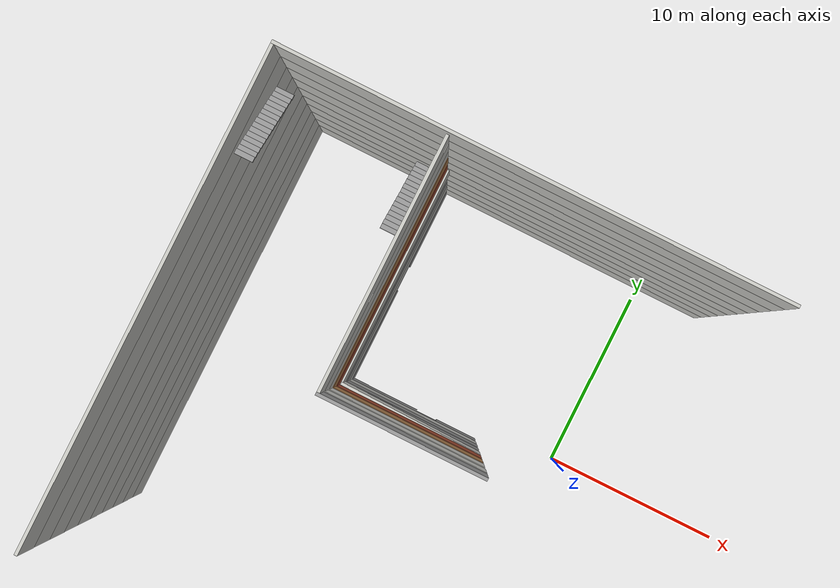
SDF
<sdf version="1.7">
 <model name="high_building">
  <pose>-8.08785 -0.655 0 0 -0 0</pose>
  <link name="Stairs_10">
   <visual name="Stairs_10_Visual_0">
    <pose>-4.5626 10.3622 21.0833 0 -0 0</pose>
    <geometry><box><size>1 0.233333 0.166667</size></box></geometry>
    <material>
     <script><uri>file://media/materials/scripts/gazebo.material</uri><name>Gazebo/Grey</name></script>
     <ambient>1 1 1 1</ambient>
    </material>
    <meta><layer>7</layer></meta>
   </visual>
   <collision name="Stairs_10_Collision_0">
    <geometry><box><size>1 0.233333 0.166667</size></box></geometry>
    <pose>-4.5626 10.3622 21.0833 0 -0 0</pose>
   </collision>
   <visual name="Stairs_10_Visual_1">
    <pose>-4.5626 10.1289 21.25 0 -0 0</pose>
    <geometry><box><size>1 0.233333 0.166667</size></box></geometry>
    <material>
     <script><uri>file://media/materials/scripts/gazebo.material</uri><name>Gazebo/Grey</name></script>
     <ambient>1 1 1 1</ambient>
    </material>
    <meta><layer>7</layer></meta>
   </visual>
   <collision name="Stairs_10_Collision_1">
    <geometry><box><size>1 0.233333 0.166667</size></box></geometry>
    <pose>-4.5626 10.1289 21.25 0 -0 0</pose>
   </collision>
   <visual name="Stairs_10_Visual_2">
    <pose>-4.5626 9.89555 21.4167 0 -0 0</pose>
    <geometry><box><size>1 0.233333 0.166667</size></box></geometry>
    <material>
     <script><uri>file://media/materials/scripts/gazebo.material</uri><name>Gazebo/Grey</name></script>
     <ambient>1 1 1 1</ambient>
    </material>
    <meta><layer>7</layer></meta>
   </visual>
   <collision name="Stairs_10_Collision_2">
    <geometry><box><size>1 0.233333 0.166667</size></box></geometry>
    <pose>-4.5626 9.89555 21.4167 0 -0 0</pose>
   </collision>
   <visual name="Stairs_10_Visual_3">
    <pose>-4.5626 9.66222 21.5833 0 -0 0</pose>
    <geometry><box><size>1 0.233333 0.166667</size></box></geometry>
    <material>
     <script><uri>file://media/materials/scripts/gazebo.material</uri><name>Gazebo/Grey</name></script>
     <ambient>1 1 1 1</ambient>
    </material>
    <meta><layer>7</layer></meta>
   </visual>
   <collision name="Stairs_10_Collision_3">
    <geometry><box><size>1 0.233333 0.166667</size></box></geometry>
    <pose>-4.5626 9.66222 21.5833 0 -0 0</pose>
   </collision>
   <visual name="Stairs_10_Visual_4">
    <pose>-4.5626 9.42889 21.75 0 -0 0</pose>
    <geometry><box><size>1 0.233333 0.166667</size></box></geometry>
    <material>
     <script><uri>file://media/materials/scripts/gazebo.material</uri><name>Gazebo/Grey</name></script>
     <ambient>1 1 1 1</ambient>
    </material>
    <meta><layer>7</layer></meta>
   </visual>
   <collision name="Stairs_10_Collision_4">
    <geometry><box><size>1 0.233333 0.166667</size></box></geometry>
    <pose>-4.5626 9.42889 21.75 0 -0 0</pose>
   </collision>
   <visual name="Stairs_10_Visual_5">
    <pose>-4.5626 9.19555 21.9167 0 -0 0</pose>
    <geometry><box><size>1 0.233333 0.166667</size></box></geometry>
    <material>
     <script><uri>file://media/materials/scripts/gazebo.material</uri><name>Gazebo/Grey</name></script>
     <ambient>1 1 1 1</ambient>
    </material>
    <meta><layer>7</layer></meta>
   </visual>
   <collision name="Stairs_10_Collision_5">
    <geometry><box><size>1 0.233333 0.166667</size></box></geometry>
    <pose>-4.5626 9.19555 21.9167 0 -0 0</pose>
   </collision>
   <visual name="Stairs_10_Visual_6">
    <pose>-4.5626 8.96222 22.0833 0 -0 0</pose>
    <geometry><box><size>1 0.233333 0.166667</size></box></geometry>
    <material>
     <script><uri>file://media/materials/scripts/gazebo.material</uri><name>Gazebo/Grey</name></script>
     <ambient>1 1 1 1</ambient>
    </material>
    <meta><layer>7</layer></meta>
   </visual>
   <collision name="Stairs_10_Collision_6">
    <geometry><box><size>1 0.233333 0.166667</size></box></geometry>
    <pose>-4.5626 8.96222 22.0833 0 -0 0</pose>
   </collision>
   <visual name="Stairs_10_Visual_7">
    <pose>-4.5626 8.72889 22.25 0 -0 0</pose>
    <geometry><box><size>1 0.233333 0.166667</size></box></geometry>
    <material>
     <script><uri>file://media/materials/scripts/gazebo.material</uri><name>Gazebo/Grey</name></script>
     <ambient>1 1 1 1</ambient>
    </material>
    <meta><layer>7</layer></meta>
   </visual>
   <collision name="Stairs_10_Collision_7">
    <geometry><box><size>1 0.233333 0.166667</size></box></geometry>
    <pose>-4.5626 8.72889 22.25 0 -0 0</pose>
   </collision>
   <visual name="Stairs_10_Visual_8">
    <pose>-4.5626 8.49555 22.4167 0 -0 0</pose>
    <geometry><box><size>1 0.233333 0.166667</size></box></geometry>
    <material>
     <script><uri>file://media/materials/scripts/gazebo.material</uri><name>Gazebo/Grey</name></script>
     <ambient>1 1 1 1</ambient>
    </material>
    <meta><layer>7</layer></meta>
   </visual>
   <collision name="Stairs_10_Collision_8">
    <geometry><box><size>1 0.233333 0.166667</size></box></geometry>
    <pose>-4.5626 8.49555 22.4167 0 -0 0</pose>
   </collision>
   <visual name="Stairs_10_Visual_9">
    <pose>-4.5626 8.26222 22.5833 0 -0 0</pose>
    <geometry><box><size>1 0.233333 0.166667</size></box></geometry>
    <material>
     <script><uri>file://media/materials/scripts/gazebo.material</uri><name>Gazebo/Grey</name></script>
     <ambient>1 1 1 1</ambient>
    </material>
    <meta><layer>7</layer></meta>
   </visual>
   <collision name="Stairs_10_Collision_9">
    <geometry><box><size>1 0.233333 0.166667</size></box></geometry>
    <pose>-4.5626 8.26222 22.5833 0 -0 0</pose>
   </collision>
   <visual name="Stairs_10_Visual_10">
    <pose>-4.5626 8.02889 22.75 0 -0 0</pose>
    <geometry><box><size>1 0.233333 0.166667</size></box></geometry>
    <material>
     <script><uri>file://media/materials/scripts/gazebo.material</uri><name>Gazebo/Grey</name></script>
     <ambient>1 1 1 1</ambient>
    </material>
    <meta><layer>7</layer></meta>
   </visual>
   <collision name="Stairs_10_Collision_10">
    <geometry><box><size>1 0.233333 0.166667</size></box></geometry>
    <pose>-4.5626 8.02889 22.75 0 -0 0</pose>
   </collision>
   <visual name="Stairs_10_Visual_11">
    <pose>-4.5626 7.79555 22.9167 0 -0 0</pose>
    <geometry><box><size>1 0.233333 0.166667</size></box></geometry>
    <material>
     <script><uri>file://media/materials/scripts/gazebo.material</uri><name>Gazebo/Grey</name></script>
     <ambient>1 1 1 1</ambient>
    </material>
    <meta><layer>7</layer></meta>
   </visual>
   <collision name="Stairs_10_Collision_11">
    <geometry><box><size>1 0.233333 0.166667</size></box></geometry>
    <pose>-4.5626 7.79555 22.9167 0 -0 0</pose>
   </collision>
   <visual name="Stairs_10_Visual_12">
    <pose>-4.5626 7.56222 23.0833 0 -0 0</pose>
    <geometry><box><size>1 0.233333 0.166667</size></box></geometry>
    <material>
     <script><uri>file://media/materials/scripts/gazebo.material</uri><name>Gazebo/Grey</name></script>
     <ambient>1 1 1 1</ambient>
    </material>
    <meta><layer>7</layer></meta>
   </visual>
   <collision name="Stairs_10_Collision_12">
    <geometry><box><size>1 0.233333 0.166667</size></box></geometry>
    <pose>-4.5626 7.56222 23.0833 0 -0 0</pose>
   </collision>
   <visual name="Stairs_10_Visual_13">
    <pose>-4.5626 7.32889 23.25 0 -0 0</pose>
    <geometry><box><size>1 0.233333 0.166667</size></box></geometry>
    <material>
     <script><uri>file://media/materials/scripts/gazebo.material</uri><name>Gazebo/Grey</name></script>
     <ambient>1 1 1 1</ambient>
    </material>
    <meta><layer>7</layer></meta>
   </visual>
   <collision name="Stairs_10_Collision_13">
    <geometry><box><size>1 0.233333 0.166667</size></box></geometry>
    <pose>-4.5626 7.32889 23.25 0 -0 0</pose>
   </collision>
   <visual name="Stairs_10_Visual_14">
    <pose>-4.5626 7.09555 23.4167 0 -0 0</pose>
    <geometry><box><size>1 0.233333 0.166667</size></box></geometry>
    <material>
     <script><uri>file://media/materials/scripts/gazebo.material</uri><name>Gazebo/Grey</name></script>
     <ambient>1 1 1 1</ambient>
    </material>
    <meta><layer>7</layer></meta>
   </visual>
   <collision name="Stairs_10_Collision_14">
    <geometry><box><size>1 0.233333 0.166667</size></box></geometry>
    <pose>-4.5626 7.09555 23.4167 0 -0 0</pose>
   </collision>
  </link>
  <link name="Stairs_11">
   <visual name="Stairs_11_Visual_0">
    <pose>-11.3873 10.2919 24.0833 0 -0 0</pose>
    <geometry><box><size>1 0.233333 0.166667</size></box></geometry>
    <material>
     <script><uri>file://media/materials/scripts/gazebo.material</uri><name>Gazebo/Grey</name></script>
     <ambient>1 1 1 1</ambient>
    </material>
    <meta><layer>8</layer></meta>
   </visual>
   <collision name="Stairs_11_Collision_0">
    <geometry><box><size>1 0.233333 0.166667</size></box></geometry>
    <pose>-11.3873 10.2919 24.0833 0 -0 0</pose>
   </collision>
   <visual name="Stairs_11_Visual_1">
    <pose>-11.3873 10.0585 24.25 0 -0 0</pose>
    <geometry><box><size>1 0.233333 0.166667</size></box></geometry>
    <material>
     <script><uri>file://media/materials/scripts/gazebo.material</uri><name>Gazebo/Grey</name></script>
     <ambient>1 1 1 1</ambient>
    </material>
    <meta><layer>8</layer></meta>
   </visual>
   <collision name="Stairs_11_Collision_1">
    <geometry><box><size>1 0.233333 0.166667</size></box></geometry>
    <pose>-11.3873 10.0585 24.25 0 -0 0</pose>
   </collision>
   <visual name="Stairs_11_Visual_2">
    <pose>-11.3873 9.8252 24.4167 0 -0 0</pose>
    <geometry><box><size>1 0.233333 0.166667</size></box></geometry>
    <material>
     <script><uri>file://media/materials/scripts/gazebo.material</uri><name>Gazebo/Grey</name></script>
     <ambient>1 1 1 1</ambient>
    </material>
    <meta><layer>8</layer></meta>
   </visual>
   <collision name="Stairs_11_Collision_2">
    <geometry><box><size>1 0.233333 0.166667</size></box></geometry>
    <pose>-11.3873 9.8252 24.4167 0 -0 0</pose>
   </collision>
   <visual name="Stairs_11_Visual_3">
    <pose>-11.3873 9.59186 24.5833 0 -0 0</pose>
    <geometry><box><size>1 0.233333 0.166667</size></box></geometry>
    <material>
     <script><uri>file://media/materials/scripts/gazebo.material</uri><name>Gazebo/Grey</name></script>
     <ambient>1 1 1 1</ambient>
    </material>
    <meta><layer>8</layer></meta>
   </visual>
   <collision name="Stairs_11_Collision_3">
    <geometry><box><size>1 0.233333 0.166667</size></box></geometry>
    <pose>-11.3873 9.59186 24.5833 0 -0 0</pose>
   </collision>
   <visual name="Stairs_11_Visual_4">
    <pose>-11.3873 9.35853 24.75 0 -0 0</pose>
    <geometry><box><size>1 0.233333 0.166667</size></box></geometry>
    <material>
     <script><uri>file://media/materials/scripts/gazebo.material</uri><name>Gazebo/Grey</name></script>
     <ambient>1 1 1 1</ambient>
    </material>
    <meta><layer>8</layer></meta>
   </visual>
   <collision name="Stairs_11_Collision_4">
    <geometry><box><size>1 0.233333 0.166667</size></box></geometry>
    <pose>-11.3873 9.35853 24.75 0 -0 0</pose>
   </collision>
   <visual name="Stairs_11_Visual_5">
    <pose>-11.3873 9.1252 24.9167 0 -0 0</pose>
    <geometry><box><size>1 0.233333 0.166667</size></box></geometry>
    <material>
     <script><uri>file://media/materials/scripts/gazebo.material</uri><name>Gazebo/Grey</name></script>
     <ambient>1 1 1 1</ambient>
    </material>
    <meta><layer>8</layer></meta>
   </visual>
   <collision name="Stairs_11_Collision_5">
    <geometry><box><size>1 0.233333 0.166667</size></box></geometry>
    <pose>-11.3873 9.1252 24.9167 0 -0 0</pose>
   </collision>
   <visual name="Stairs_11_Visual_6">
    <pose>-11.3873 8.89186 25.0833 0 -0 0</pose>
    <geometry><box><size>1 0.233333 0.166667</size></box></geometry>
    <material>
     <script><uri>file://media/materials/scripts/gazebo.material</uri><name>Gazebo/Grey</name></script>
     <ambient>1 1 1 1</ambient>
    </material>
    <meta><layer>8</layer></meta>
   </visual>
   <collision name="Stairs_11_Collision_6">
    <geometry><box><size>1 0.233333 0.166667</size></box></geometry>
    <pose>-11.3873 8.89186 25.0833 0 -0 0</pose>
   </collision>
   <visual name="Stairs_11_Visual_7">
    <pose>-11.3873 8.65853 25.25 0 -0 0</pose>
    <geometry><box><size>1 0.233333 0.166667</size></box></geometry>
    <material>
     <script><uri>file://media/materials/scripts/gazebo.material</uri><name>Gazebo/Grey</name></script>
     <ambient>1 1 1 1</ambient>
    </material>
    <meta><layer>8</layer></meta>
   </visual>
   <collision name="Stairs_11_Collision_7">
    <geometry><box><size>1 0.233333 0.166667</size></box></geometry>
    <pose>-11.3873 8.65853 25.25 0 -0 0</pose>
   </collision>
   <visual name="Stairs_11_Visual_8">
    <pose>-11.3873 8.4252 25.4167 0 -0 0</pose>
    <geometry><box><size>1 0.233333 0.166667</size></box></geometry>
    <material>
     <script><uri>file://media/materials/scripts/gazebo.material</uri><name>Gazebo/Grey</name></script>
     <ambient>1 1 1 1</ambient>
    </material>
    <meta><layer>8</layer></meta>
   </visual>
   <collision name="Stairs_11_Collision_8">
    <geometry><box><size>1 0.233333 0.166667</size></box></geometry>
    <pose>-11.3873 8.4252 25.4167 0 -0 0</pose>
   </collision>
   <visual name="Stairs_11_Visual_9">
    <pose>-11.3873 8.19186 25.5833 0 -0 0</pose>
    <geometry><box><size>1 0.233333 0.166667</size></box></geometry>
    <material>
     <script><uri>file://media/materials/scripts/gazebo.material</uri><name>Gazebo/Grey</name></script>
     <ambient>1 1 1 1</ambient>
    </material>
    <meta><layer>8</layer></meta>
   </visual>
   <collision name="Stairs_11_Collision_9">
    <geometry><box><size>1 0.233333 0.166667</size></box></geometry>
    <pose>-11.3873 8.19186 25.5833 0 -0 0</pose>
   </collision>
   <visual name="Stairs_11_Visual_10">
    <pose>-11.3873 7.95853 25.75 0 -0 0</pose>
    <geometry><box><size>1 0.233333 0.166667</size></box></geometry>
    <material>
     <script><uri>file://media/materials/scripts/gazebo.material</uri><name>Gazebo/Grey</name></script>
     <ambient>1 1 1 1</ambient>
    </material>
    <meta><layer>8</layer></meta>
   </visual>
   <collision name="Stairs_11_Collision_10">
    <geometry><box><size>1 0.233333 0.166667</size></box></geometry>
    <pose>-11.3873 7.95853 25.75 0 -0 0</pose>
   </collision>
   <visual name="Stairs_11_Visual_11">
    <pose>-11.3873 7.7252 25.9167 0 -0 0</pose>
    <geometry><box><size>1 0.233333 0.166667</size></box></geometry>
    <material>
     <script><uri>file://media/materials/scripts/gazebo.material</uri><name>Gazebo/Grey</name></script>
     <ambient>1 1 1 1</ambient>
    </material>
    <meta><layer>8</layer></meta>
   </visual>
   <collision name="Stairs_11_Collision_11">
    <geometry><box><size>1 0.233333 0.166667</size></box></geometry>
    <pose>-11.3873 7.7252 25.9167 0 -0 0</pose>
   </collision>
   <visual name="Stairs_11_Visual_12">
    <pose>-11.3873 7.49186 26.0833 0 -0 0</pose>
    <geometry><box><size>1 0.233333 0.166667</size></box></geometry>
    <material>
     <script><uri>file://media/materials/scripts/gazebo.material</uri><name>Gazebo/Grey</name></script>
     <ambient>1 1 1 1</ambient>
    </material>
    <meta><layer>8</layer></meta>
   </visual>
   <collision name="Stairs_11_Collision_12">
    <geometry><box><size>1 0.233333 0.166667</size></box></geometry>
    <pose>-11.3873 7.49186 26.0833 0 -0 0</pose>
   </collision>
   <visual name="Stairs_11_Visual_13">
    <pose>-11.3873 7.25853 26.25 0 -0 0</pose>
    <geometry><box><size>1 0.233333 0.166667</size></box></geometry>
    <material>
     <script><uri>file://media/materials/scripts/gazebo.material</uri><name>Gazebo/Grey</name></script>
     <ambient>1 1 1 1</ambient>
    </material>
    <meta><layer>8</layer></meta>
   </visual>
   <collision name="Stairs_11_Collision_13">
    <geometry><box><size>1 0.233333 0.166667</size></box></geometry>
    <pose>-11.3873 7.25853 26.25 0 -0 0</pose>
   </collision>
   <visual name="Stairs_11_Visual_14">
    <pose>-11.3873 7.0252 26.4167 0 -0 0</pose>
    <geometry><box><size>1 0.233333 0.166667</size></box></geometry>
    <material>
     <script><uri>file://media/materials/scripts/gazebo.material</uri><name>Gazebo/Grey</name></script>
     <ambient>1 1 1 1</ambient>
    </material>
    <meta><layer>8</layer></meta>
   </visual>
   <collision name="Stairs_11_Collision_14">
    <geometry><box><size>1 0.233333 0.166667</size></box></geometry>
    <pose>-11.3873 7.0252 26.4167 0 -0 0</pose>
   </collision>
  </link>
  <link name="Wall_100">
   <collision name="Wall_100_Collision">
    <geometry><box><size>7.75 0.15 2.5</size></box></geometry>
    <pose>0 0 1.25 0 -0 0</pose>
   </collision>
   <visual name="Wall_100_Visual">
    <pose>0 0 1.25 0 -0 0</pose>
    <geometry><box><size>7.75 0.15 2.5</size></box></geometry>
    <material>
     <script><uri>file://media/materials/scripts/gazebo.material</uri><name>Gazebo/CeilingTiled</name></script>
     <ambient>1 1 1 1</ambient>
    </material>
    <meta><layer>8</layer></meta>
   </visual>
   <pose>-0.162125 -0.369911 24 0 -0 3.14159</pose>
  </link>
  <link name="Wall_101">
   <collision name="Wall_101_Collision">
    <geometry><box><size>11.75 0.15 2.5</size></box></geometry>
    <pose>0 0 1.25 0 -0 0</pose>
   </collision>
   <visual name="Wall_101_Visual">
    <pose>0 0 1.25 0 -0 0</pose>
    <geometry><box><size>11.75 0.15 2.5</size></box></geometry>
    <material>
     <script><uri>file://media/materials/scripts/gazebo.material</uri><name>Gazebo/CeilingTiled</name></script>
     <ambient>1 1 1 1</ambient>
    </material>
    <meta><layer>8</layer></meta>
   </visual>
   <pose>-3.96212 5.43009 24 0 -0 1.5708</pose>
  </link>
  <link name="Wall_104">
   <collision name="Wall_104_Collision">
    <geometry><box><size>23.639 0.15 3</size></box></geometry>
    <pose>0 0 1.5 0 -0 0</pose>
   </collision>
   <visual name="Wall_104_Visual">
    <pose>0 0 1.5 0 -0 0</pose>
    <geometry><box><size>23.639 0.15 3</size></box></geometry>
    <material>
     <script><uri>file://media/materials/scripts/gazebo.material</uri><name>Gazebo/CeilingTiled</name></script>
     <ambient>1 1 1 1</ambient>
    </material>
    <meta><layer>9</layer></meta>
   </visual>
   <pose>-0.08465 11.425 27 0 -0 3.14159</pose>
  </link>
  <link name="Wall_105">
   <collision name="Wall_105_Collision">
    <geometry><box><size>23 0.15 3</size></box></geometry>
    <pose>0 0 1.5 0 -0 0</pose>
   </collision>
   <visual name="Wall_105_Visual">
    <pose>0 0 1.5 0 -0 0</pose>
    <geometry><box><size>23 0.15 3</size></box></geometry>
    <material>
     <script><uri>file://media/materials/scripts/gazebo.material</uri><name>Gazebo/CeilingTiled</name></script>
     <ambient>1 1 1 1</ambient>
    </material>
    <meta><layer>9</layer></meta>
   </visual>
   <pose>-11.8292 -0 27 0 -0 -1.5708</pose>
  </link>
  <link name="Wall_107">
   <collision name="Wall_107_Collision">
    <geometry><box><size>7.75 0.15 2.5</size></box></geometry>
    <pose>0 0 1.25 0 -0 0</pose>
   </collision>
   <visual name="Wall_107_Visual">
    <pose>0 0 1.25 0 -0 0</pose>
    <geometry><box><size>7.75 0.15 2.5</size></box></geometry>
    <material>
     <script><uri>file://media/materials/scripts/gazebo.material</uri><name>Gazebo/Grey</name></script>
     <ambient>1 1 1 1</ambient>
    </material>
    <meta><layer>9</layer></meta>
   </visual>
   <pose>-0.162125 -0.369911 27 0 -0 3.14159</pose>
  </link>
  <link name="Wall_108">
   <collision name="Wall_108_Collision">
    <geometry><box><size>11.75 0.15 2.5</size></box></geometry>
    <pose>0 0 1.25 0 -0 0</pose>
   </collision>
   <visual name="Wall_108_Visual">
    <pose>0 0 1.25 0 -0 0</pose>
    <geometry><box><size>11.75 0.15 2.5</size></box></geometry>
    <material>
     <script><uri>file://media/materials/scripts/gazebo.material</uri><name>Gazebo/CeilingTiled</name></script>
     <ambient>1 1 1 1</ambient>
    </material>
    <meta><layer>9</layer></meta>
   </visual>
   <pose>-3.96212 5.43009 27 0 -0 1.5708</pose>
  </link>
  <link name="Wall_11">
   <collision name="Wall_11_Collision">
    <geometry><box><size>23.6394 0.15 3</size></box></geometry>
    <pose>0 0 1.5 0 -0 0</pose>
   </collision>
   <visual name="Wall_11_Visual">
    <pose>0 0 1.5 0 -0 0</pose>
    <geometry><box><size>23.6394 0.15 3</size></box></geometry>
    <material>
     <script><uri>file://media/materials/scripts/gazebo.material</uri><name>Gazebo/CeilingTiled</name></script>
     <ambient>1 1 1 1</ambient>
    </material>
    <meta><layer>0</layer></meta>
   </visual>
   <pose>-0.08465 11.425 0 0 -0 3.14159</pose>
  </link>
  <link name="Wall_12">
   <collision name="Wall_12_Collision">
    <geometry><box><size>23 0.15 3</size></box></geometry>
    <pose>0 0 1.5 0 -0 0</pose>
   </collision>
   <visual name="Wall_12_Visual">
    <pose>0 0 1.5 0 -0 0</pose>
    <geometry><box><size>23 0.15 3</size></box></geometry>
    <material>
     <script><uri>file://media/materials/scripts/gazebo.material</uri><name>Gazebo/CeilingTiled</name></script>
     <ambient>1 1 1 1</ambient>
    </material>
    <meta><layer>0</layer></meta>
   </visual>
   <pose>-11.8292 -0 0 0 -0 -1.5708</pose>
  </link>
  <link name="Wall_15">
   <pose>-0.162125 -0.369911 0 0 -0 3.14159</pose>
   <visual name="Wall_15_Visual_0">
    <pose>-2.65212 0 1.25 0 -0 0</pose>
    <geometry><box><size>2.44576 0.15 2.5</size></box></geometry>
    <material>
     <script><uri>file://media/materials/scripts/gazebo.material</uri><name>Gazebo/Grey</name></script>
     <ambient>1 1 1 1</ambient>
    </material>
    <meta><layer>0</layer></meta>
   </visual>
   <collision name="Wall_15_Collision_0">
    <geometry><box><size>2.44576 0.15 2.5</size></box></geometry>
    <pose>-2.65212 0 1.25 0 -0 0</pose>
   </collision>
   <visual name="Wall_15_Visual_1">
    <pose>1.82288 0 1.25 0 -0 0</pose>
    <geometry><box><size>4.10424 0.15 2.5</size></box></geometry>
    <material>
     <script><uri>file://media/materials/scripts/gazebo.material</uri><name>Gazebo/Grey</name></script>
     <ambient>1 1 1 1</ambient>
    </material>
    <meta><layer>0</layer></meta>
   </visual>
   <collision name="Wall_15_Collision_1">
    <geometry><box><size>4.10424 0.15 2.5</size></box></geometry>
    <pose>1.82288 0 1.25 0 -0 0</pose>
   </collision>
   <visual name="Wall_15_Visual_2">
    <pose>-0.829244 0 2.25 0 -0 0</pose>
    <geometry><box><size>1.2 0.15 0.5</size></box></geometry>
    <material>
     <script><uri>file://media/materials/scripts/gazebo.material</uri><name>Gazebo/Grey</name></script>
     <ambient>1 1 1 1</ambient>
    </material>
    <meta><layer>0</layer></meta>
   </visual>
   <collision name="Wall_15_Collision_2">
    <geometry><box><size>1.2 0.15 0.5</size></box></geometry>
    <pose>-0.829244 0 2.25 0 -0 0</pose>
   </collision>
  </link>
  <link name="Wall_16">
   <pose>-3.96212 5.43009 0 0 -0 1.5708</pose>
   <visual name="Wall_16_Visual_0">
    <pose>-3.05035 0 1.25 0 -0 0</pose>
    <geometry><box><size>5.6493 0.15 2.5</size></box></geometry>
    <material>
     <script><uri>file://media/materials/scripts/gazebo.material</uri><name>Gazebo/Grey</name></script>
     <ambient>1 1 1 1</ambient>
    </material>
    <meta><layer>0</layer></meta>
   </visual>
   <collision name="Wall_16_Collision_0">
    <geometry><box><size>5.6493 0.15 2.5</size></box></geometry>
    <pose>-3.05035 0 1.25 0 -0 0</pose>
   </collision>
   <visual name="Wall_16_Visual_1">
    <pose>3.57465 0 1.25 0 -0 0</pose>
    <geometry><box><size>4.6007 0.15 2.5</size></box></geometry>
    <material>
     <script><uri>file://media/materials/scripts/gazebo.material</uri><name>Gazebo/Grey</name></script>
     <ambient>1 1 1 1</ambient>
    </material>
    <meta><layer>0</layer></meta>
   </visual>
   <collision name="Wall_16_Collision_1">
    <geometry><box><size>4.6007 0.15 2.5</size></box></geometry>
    <pose>3.57465 0 1.25 0 -0 0</pose>
   </collision>
   <visual name="Wall_16_Visual_2">
    <pose>0.524303 0 2.25 0 -0 0</pose>
    <geometry><box><size>1.5 0.15 0.5</size></box></geometry>
    <material>
     <script><uri>file://media/materials/scripts/gazebo.material</uri><name>Gazebo/Grey</name></script>
     <ambient>1 1 1 1</ambient>
    </material>
    <meta><layer>0</layer></meta>
   </visual>
   <collision name="Wall_16_Collision_2">
    <geometry><box><size>1.5 0.15 0.5</size></box></geometry>
    <pose>0.524303 0 2.25 0 -0 0</pose>
   </collision>
  </link>
  <link name="Wall_20">
   <collision name="Wall_20_Collision">
    <geometry><box><size>23.639 0.15 3</size></box></geometry>
    <pose>0 0 1.5 0 -0 0</pose>
   </collision>
   <visual name="Wall_20_Visual">
    <pose>0 0 1.5 0 -0 0</pose>
    <geometry><box><size>23.639 0.15 3</size></box></geometry>
    <material>
     <script><uri>file://media/materials/scripts/gazebo.material</uri><name>Gazebo/CeilingTiled</name></script>
     <ambient>1 1 1 1</ambient>
    </material>
    <meta><layer>1</layer></meta>
   </visual>
   <pose>-0.08465 11.425 3 0 -0 3.14159</pose>
  </link>
  <link name="Wall_21">
   <collision name="Wall_21_Collision">
    <geometry><box><size>23 0.15 3</size></box></geometry>
    <pose>0 0 1.5 0 -0 0</pose>
   </collision>
   <visual name="Wall_21_Visual">
    <pose>0 0 1.5 0 -0 0</pose>
    <geometry><box><size>23 0.15 3</size></box></geometry>
    <material>
     <script><uri>file://media/materials/scripts/gazebo.material</uri><name>Gazebo/CeilingTiled</name></script>
     <ambient>1 1 1 1</ambient>
    </material>
    <meta><layer>1</layer></meta>
   </visual>
   <pose>-11.8292 -0 3 0 -0 -1.5708</pose>
  </link>
  <link name="Wall_23">
   <collision name="Wall_23_Collision">
    <geometry><box><size>7.75 0.15 2.5</size></box></geometry>
    <pose>0 0 1.25 0 -0 0</pose>
   </collision>
   <visual name="Wall_23_Visual">
    <pose>0 0 1.25 0 -0 0</pose>
    <geometry><box><size>7.75 0.15 2.5</size></box></geometry>
    <material>
     <script><uri>file://media/materials/scripts/gazebo.material</uri><name>Gazebo/CeilingTiled</name></script>
     <ambient>1 1 1 1</ambient>
    </material>
    <meta><layer>1</layer></meta>
   </visual>
   <pose>-0.162125 -0.369911 3 0 -0 3.14159</pose>
  </link>
  <link name="Wall_24">
   <collision name="Wall_24_Collision">
    <geometry><box><size>11.75 0.15 2.5</size></box></geometry>
    <pose>0 0 1.25 0 -0 0</pose>
   </collision>
   <visual name="Wall_24_Visual">
    <pose>0 0 1.25 0 -0 0</pose>
    <geometry><box><size>11.75 0.15 2.5</size></box></geometry>
    <material>
     <script><uri>file://media/materials/scripts/gazebo.material</uri><name>Gazebo/CeilingTiled</name></script>
     <ambient>1 1 1 1</ambient>
    </material>
    <meta><layer>1</layer></meta>
   </visual>
   <pose>-3.96212 5.43009 3 0 -0 1.5708</pose>
  </link>
  <link name="Wall_27">
   <collision name="Wall_27_Collision">
    <geometry><box><size>23.639 0.15 3</size></box></geometry>
    <pose>0 0 1.5 0 -0 0</pose>
   </collision>
   <visual name="Wall_27_Visual">
    <pose>0 0 1.5 0 -0 0</pose>
    <geometry><box><size>23.639 0.15 3</size></box></geometry>
    <material>
     <script><uri>file://media/materials/scripts/gazebo.material</uri><name>Gazebo/CeilingTiled</name></script>
     <ambient>1 1 1 1</ambient>
    </material>
    <meta><layer>2</layer></meta>
   </visual>
   <pose>-0.08465 11.425 6 0 -0 3.14159</pose>
  </link>
  <link name="Wall_28">
   <collision name="Wall_28_Collision">
    <geometry><box><size>23 0.15 3</size></box></geometry>
    <pose>0 0 1.5 0 -0 0</pose>
   </collision>
   <visual name="Wall_28_Visual">
    <pose>0 0 1.5 0 -0 0</pose>
    <geometry><box><size>23 0.15 3</size></box></geometry>
    <material>
     <script><uri>file://media/materials/scripts/gazebo.material</uri><name>Gazebo/CeilingTiled</name></script>
     <ambient>1 1 1 1</ambient>
    </material>
    <meta><layer>2</layer></meta>
   </visual>
   <pose>-11.8292 -0 6 0 -0 -1.5708</pose>
  </link>
  <link name="Wall_30">
   <collision name="Wall_30_Collision">
    <geometry><box><size>7.75 0.15 2.5</size></box></geometry>
    <pose>0 0 1.25 0 -0 0</pose>
   </collision>
   <visual name="Wall_30_Visual">
    <pose>0 0 1.25 0 -0 0</pose>
    <geometry><box><size>7.75 0.15 2.5</size></box></geometry>
    <material>
     <script><uri>file://media/materials/scripts/gazebo.material</uri><name>Gazebo/Grey</name></script>
     <ambient>1 1 1 1</ambient>
    </material>
    <meta><layer>2</layer></meta>
   </visual>
   <pose>-0.162125 -0.369911 6 0 -0 3.14159</pose>
  </link>
  <link name="Wall_31">
   <collision name="Wall_31_Collision">
    <geometry><box><size>11.75 0.15 2.5</size></box></geometry>
    <pose>0 0 1.25 0 -0 0</pose>
   </collision>
   <visual name="Wall_31_Visual">
    <pose>0 0 1.25 0 -0 0</pose>
    <geometry><box><size>11.75 0.15 2.5</size></box></geometry>
    <material>
     <script><uri>file://media/materials/scripts/gazebo.material</uri><name>Gazebo/Grey</name></script>
     <ambient>1 1 1 1</ambient>
    </material>
    <meta><layer>2</layer></meta>
   </visual>
   <pose>-3.96212 5.43009 6 0 -0 1.5708</pose>
  </link>
  <link name="Wall_62">
   <collision name="Wall_62_Collision">
    <geometry><box><size>23.639 0.15 3</size></box></geometry>
    <pose>0 0 1.5 0 -0 0</pose>
   </collision>
   <visual name="Wall_62_Visual">
    <pose>0 0 1.5 0 -0 0</pose>
    <geometry><box><size>23.639 0.15 3</size></box></geometry>
    <material>
     <script><uri>file://media/materials/scripts/gazebo.material</uri><name>Gazebo/CeilingTiled</name></script>
     <ambient>1 1 1 1</ambient>
    </material>
    <meta><layer>3</layer></meta>
   </visual>
   <pose>-0.08465 11.425 9 0 -0 3.14159</pose>
  </link>
  <link name="Wall_63">
   <collision name="Wall_63_Collision">
    <geometry><box><size>23 0.15 3</size></box></geometry>
    <pose>0 0 1.5 0 -0 0</pose>
   </collision>
   <visual name="Wall_63_Visual">
    <pose>0 0 1.5 0 -0 0</pose>
    <geometry><box><size>23 0.15 3</size></box></geometry>
    <material>
     <script><uri>file://media/materials/scripts/gazebo.material</uri><name>Gazebo/CeilingTiled</name></script>
     <ambient>1 1 1 1</ambient>
    </material>
    <meta><layer>3</layer></meta>
   </visual>
   <pose>-11.8292 -0 9 0 -0 -1.5708</pose>
  </link>
  <link name="Wall_65">
   <collision name="Wall_65_Collision">
    <geometry><box><size>7.75 0.15 2.5</size></box></geometry>
    <pose>0 0 1.25 0 -0 0</pose>
   </collision>
   <visual name="Wall_65_Visual">
    <pose>0 0 1.25 0 -0 0</pose>
    <geometry><box><size>7.75 0.15 2.5</size></box></geometry>
    <material>
     <script><uri>file://media/materials/scripts/gazebo.material</uri><name>Gazebo/Grey</name></script>
     <ambient>1 1 1 1</ambient>
    </material>
    <meta><layer>3</layer></meta>
   </visual>
   <pose>-0.162125 -0.369911 9 0 -0 3.14159</pose>
  </link>
  <link name="Wall_66">
   <collision name="Wall_66_Collision">
    <geometry><box><size>11.75 0.15 2.5</size></box></geometry>
    <pose>0 0 1.25 0 -0 0</pose>
   </collision>
   <visual name="Wall_66_Visual">
    <pose>0 0 1.25 0 -0 0</pose>
    <geometry><box><size>11.75 0.15 2.5</size></box></geometry>
    <material>
     <script><uri>file://media/materials/scripts/gazebo.material</uri><name>Gazebo/CeilingTiled</name></script>
     <ambient>1 1 1 1</ambient>
    </material>
    <meta><layer>3</layer></meta>
   </visual>
   <pose>-3.96212 5.43009 9 0 -0 1.5708</pose>
  </link>
  <link name="Wall_69">
   <collision name="Wall_69_Collision">
    <geometry><box><size>23.639 0.15 3</size></box></geometry>
    <pose>0 0 1.5 0 -0 0</pose>
   </collision>
   <visual name="Wall_69_Visual">
    <pose>0 0 1.5 0 -0 0</pose>
    <geometry><box><size>23.639 0.15 3</size></box></geometry>
    <material>
     <script><uri>file://media/materials/scripts/gazebo.material</uri><name>Gazebo/CeilingTiled</name></script>
     <ambient>1 1 1 1</ambient>
    </material>
    <meta><layer>4</layer></meta>
   </visual>
   <pose>-0.08465 11.425 12 0 -0 3.14159</pose>
  </link>
  <link name="Wall_70">
   <collision name="Wall_70_Collision">
    <geometry><box><size>23 0.15 3</size></box></geometry>
    <pose>0 0 1.5 0 -0 0</pose>
   </collision>
   <visual name="Wall_70_Visual">
    <pose>0 0 1.5 0 -0 0</pose>
    <geometry><box><size>23 0.15 3</size></box></geometry>
    <material>
     <script><uri>file://media/materials/scripts/gazebo.material</uri><name>Gazebo/CeilingTiled</name></script>
     <ambient>1 1 1 1</ambient>
    </material>
    <meta><layer>4</layer></meta>
   </visual>
   <pose>-11.8292 -0 12 0 -0 -1.5708</pose>
  </link>
  <link name="Wall_72">
   <collision name="Wall_72_Collision">
    <geometry><box><size>7.60776 0.15 2.5</size></box></geometry>
    <pose>0 0 1.25 0 -0 0</pose>
   </collision>
   <visual name="Wall_72_Visual">
    <pose>0 0 1.25 0 -0 0</pose>
    <geometry><box><size>7.60776 0.15 2.5</size></box></geometry>
    <material>
     <script><uri>file://media/materials/scripts/gazebo.material</uri><name>Gazebo/CeilingTiled</name></script>
     <ambient>1 1 1 1</ambient>
    </material>
    <meta><layer>4</layer></meta>
   </visual>
   <pose>-0.090396 -0.302437 12 0 -0 3.1235</pose>
  </link>
  <link name="Wall_73">
   <collision name="Wall_73_Collision">
    <geometry><box><size>11.75 0.15 2.5</size></box></geometry>
    <pose>0 0 1.25 0 -0 0</pose>
   </collision>
   <visual name="Wall_73_Visual">
    <pose>0 0 1.25 0 -0 0</pose>
    <geometry><box><size>11.75 0.15 2.5</size></box></geometry>
    <material>
     <script><uri>file://media/materials/scripts/gazebo.material</uri><name>Gazebo/CeilingTiled</name></script>
     <ambient>1 1 1 1</ambient>
    </material>
    <meta><layer>4</layer></meta>
   </visual>
   <pose>-3.88943 5.49428 12 0 -0 1.5708</pose>
  </link>
  <link name="Wall_76">
   <collision name="Wall_76_Collision">
    <geometry><box><size>23.639 0.15 3</size></box></geometry>
    <pose>0 0 1.5 0 -0 0</pose>
   </collision>
   <visual name="Wall_76_Visual">
    <pose>0 0 1.5 0 -0 0</pose>
    <geometry><box><size>23.639 0.15 3</size></box></geometry>
    <material>
     <script><uri>file://media/materials/scripts/gazebo.material</uri><name>Gazebo/CeilingTiled</name></script>
     <ambient>1 1 1 1</ambient>
    </material>
    <meta><layer>5</layer></meta>
   </visual>
   <pose>-0.08465 11.425 15 0 -0 3.14159</pose>
  </link>
  <link name="Wall_77">
   <collision name="Wall_77_Collision">
    <geometry><box><size>23 0.15 3</size></box></geometry>
    <pose>0 0 1.5 0 -0 0</pose>
   </collision>
   <visual name="Wall_77_Visual">
    <pose>0 0 1.5 0 -0 0</pose>
    <geometry><box><size>23 0.15 3</size></box></geometry>
    <material>
     <script><uri>file://media/materials/scripts/gazebo.material</uri><name>Gazebo/CeilingTiled</name></script>
     <ambient>1 1 1 1</ambient>
    </material>
    <meta><layer>5</layer></meta>
   </visual>
   <pose>-11.8292 -0 15 0 -0 -1.5708</pose>
  </link>
  <link name="Wall_79">
   <collision name="Wall_79_Collision">
    <geometry><box><size>7.75 0.15 2.5</size></box></geometry>
    <pose>0 0 1.25 0 -0 0</pose>
   </collision>
   <visual name="Wall_79_Visual">
    <pose>0 0 1.25 0 -0 0</pose>
    <geometry><box><size>7.75 0.15 2.5</size></box></geometry>
    <material>
     <script><uri>file://media/materials/scripts/gazebo.material</uri><name>Gazebo/Bricks</name></script>
     <ambient>1 1 1 1</ambient>
    </material>
    <meta><layer>5</layer></meta>
   </visual>
   <pose>-0.162125 -0.369911 15 0 -0 3.14159</pose>
  </link>
  <link name="Wall_80">
   <collision name="Wall_80_Collision">
    <geometry><box><size>11.75 0.15 2.5</size></box></geometry>
    <pose>0 0 1.25 0 -0 0</pose>
   </collision>
   <visual name="Wall_80_Visual">
    <pose>0 0 1.25 0 -0 0</pose>
    <geometry><box><size>11.75 0.15 2.5</size></box></geometry>
    <material>
     <script><uri>file://media/materials/scripts/gazebo.material</uri><name>Gazebo/Bricks</name></script>
     <ambient>1 1 1 1</ambient>
    </material>
    <meta><layer>5</layer></meta>
   </visual>
   <pose>-3.96212 5.43009 15 0 -0 1.5708</pose>
  </link>
  <link name="Wall_83">
   <collision name="Wall_83_Collision">
    <geometry><box><size>23.639 0.15 3</size></box></geometry>
    <pose>0 0 1.5 0 -0 0</pose>
   </collision>
   <visual name="Wall_83_Visual">
    <pose>0 0 1.5 0 -0 0</pose>
    <geometry><box><size>23.639 0.15 3</size></box></geometry>
    <material>
     <script><uri>file://media/materials/scripts/gazebo.material</uri><name>Gazebo/CeilingTiled</name></script>
     <ambient>1 1 1 1</ambient>
    </material>
    <meta><layer>6</layer></meta>
   </visual>
   <pose>-0.08465 11.425 18 0 -0 3.14159</pose>
  </link>
  <link name="Wall_84">
   <collision name="Wall_84_Collision">
    <geometry><box><size>23 0.15 3</size></box></geometry>
    <pose>0 0 1.5 0 -0 0</pose>
   </collision>
   <visual name="Wall_84_Visual">
    <pose>0 0 1.5 0 -0 0</pose>
    <geometry><box><size>23 0.15 3</size></box></geometry>
    <material>
     <script><uri>file://media/materials/scripts/gazebo.material</uri><name>Gazebo/CeilingTiled</name></script>
     <ambient>1 1 1 1</ambient>
    </material>
    <meta><layer>6</layer></meta>
   </visual>
   <pose>-11.8292 -0 18 0 -0 -1.5708</pose>
  </link>
  <link name="Wall_86">
   <collision name="Wall_86_Collision">
    <geometry><box><size>7.75 0.15 2.5</size></box></geometry>
    <pose>0 0 1.25 0 -0 0</pose>
   </collision>
   <visual name="Wall_86_Visual">
    <pose>0 0 1.25 0 -0 0</pose>
    <geometry><box><size>7.75 0.15 2.5</size></box></geometry>
    <material>
     <script><uri>file://media/materials/scripts/gazebo.material</uri><name>Gazebo/Wood</name></script>
     <ambient>1 1 1 1</ambient>
    </material>
    <meta><layer>6</layer></meta>
   </visual>
   <pose>-0.162125 -0.369911 18 0 -0 3.14159</pose>
  </link>
  <link name="Wall_87">
   <collision name="Wall_87_Collision">
    <geometry><box><size>11.75 0.15 2.5</size></box></geometry>
    <pose>0 0 1.25 0 -0 0</pose>
   </collision>
   <visual name="Wall_87_Visual">
    <pose>0 0 1.25 0 -0 0</pose>
    <geometry><box><size>11.75 0.15 2.5</size></box></geometry>
    <material>
     <script><uri>file://media/materials/scripts/gazebo.material</uri><name>Gazebo/Wood</name></script>
     <ambient>1 1 1 1</ambient>
    </material>
    <meta><layer>6</layer></meta>
   </visual>
   <pose>-3.96212 5.43009 18 0 -0 1.5708</pose>
  </link>
  <link name="Wall_90">
   <collision name="Wall_90_Collision">
    <geometry><box><size>23.639 0.15 3</size></box></geometry>
    <pose>0 0 1.5 0 -0 0</pose>
   </collision>
   <visual name="Wall_90_Visual">
    <pose>0 0 1.5 0 -0 0</pose>
    <geometry><box><size>23.639 0.15 3</size></box></geometry>
    <material>
     <script><uri>file://media/materials/scripts/gazebo.material</uri><name>Gazebo/CeilingTiled</name></script>
     <ambient>1 1 1 1</ambient>
    </material>
    <meta><layer>7</layer></meta>
   </visual>
   <pose>-0.08465 11.425 21 0 -0 3.14159</pose>
  </link>
  <link name="Wall_91">
   <collision name="Wall_91_Collision">
    <geometry><box><size>23 0.15 3</size></box></geometry>
    <pose>0 0 1.5 0 -0 0</pose>
   </collision>
   <visual name="Wall_91_Visual">
    <pose>0 0 1.5 0 -0 0</pose>
    <geometry><box><size>23 0.15 3</size></box></geometry>
    <material>
     <script><uri>file://media/materials/scripts/gazebo.material</uri><name>Gazebo/CeilingTiled</name></script>
     <ambient>1 1 1 1</ambient>
    </material>
    <meta><layer>7</layer></meta>
   </visual>
   <pose>-11.8292 -0 21 0 -0 -1.5708</pose>
  </link>
  <link name="Wall_93">
   <collision name="Wall_93_Collision">
    <geometry><box><size>7.75 0.15 2.5</size></box></geometry>
    <pose>0 0 1.25 0 -0 0</pose>
   </collision>
   <visual name="Wall_93_Visual">
    <pose>0 0 1.25 0 -0 0</pose>
    <geometry><box><size>7.75 0.15 2.5</size></box></geometry>
    <material>
     <script><uri>file://media/materials/scripts/gazebo.material</uri><name>Gazebo/CeilingTiled</name></script>
     <ambient>1 1 1 1</ambient>
    </material>
    <meta><layer>7</layer></meta>
   </visual>
   <pose>-0.162125 -0.369911 21 0 -0 3.14159</pose>
  </link>
  <link name="Wall_94">
   <collision name="Wall_94_Collision">
    <geometry><box><size>11.75 0.15 2.5</size></box></geometry>
    <pose>0 0 1.25 0 -0 0</pose>
   </collision>
   <visual name="Wall_94_Visual">
    <pose>0 0 1.25 0 -0 0</pose>
    <geometry><box><size>11.75 0.15 2.5</size></box></geometry>
    <material>
     <script><uri>file://media/materials/scripts/gazebo.material</uri><name>Gazebo/CeilingTiled</name></script>
     <ambient>1 1 1 1</ambient>
    </material>
    <meta><layer>7</layer></meta>
   </visual>
   <pose>-3.96212 5.43009 21 0 -0 1.5708</pose>
  </link>
  <link name="Wall_97">
   <collision name="Wall_97_Collision">
    <geometry><box><size>23.639 0.15 3</size></box></geometry>
    <pose>0 0 1.5 0 -0 0</pose>
   </collision>
   <visual name="Wall_97_Visual">
    <pose>0 0 1.5 0 -0 0</pose>
    <geometry><box><size>23.639 0.15 3</size></box></geometry>
    <material>
     <script><uri>file://media/materials/scripts/gazebo.material</uri><name>Gazebo/CeilingTiled</name></script>
     <ambient>1 1 1 1</ambient>
    </material>
    <meta><layer>8</layer></meta>
   </visual>
   <pose>-0.08465 11.425 24 0 -0 3.14159</pose>
  </link>
  <link name="Wall_98">
   <collision name="Wall_98_Collision">
    <geometry><box><size>23 0.15 3</size></box></geometry>
    <pose>0 0 1.5 0 -0 0</pose>
   </collision>
   <visual name="Wall_98_Visual">
    <pose>0 0 1.5 0 -0 0</pose>
    <geometry><box><size>23 0.15 3</size></box></geometry>
    <material>
     <script><uri>file://media/materials/scripts/gazebo.material</uri><name>Gazebo/CeilingTiled</name></script>
     <ambient>1 1 1 1</ambient>
    </material>
    <meta><layer>8</layer></meta>
   </visual>
   <pose>-11.8292 -0 24 0 -0 -1.5708</pose>
  </link>
  <static>1</static>
 </model>
</sdf>
